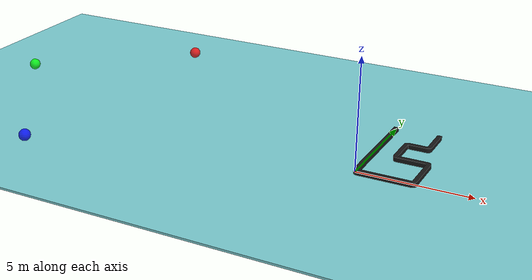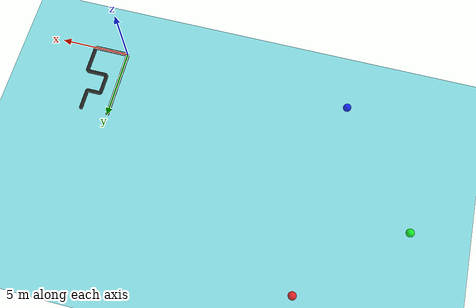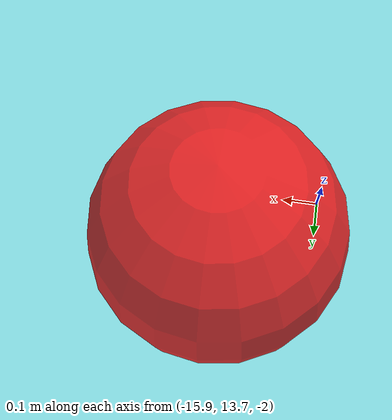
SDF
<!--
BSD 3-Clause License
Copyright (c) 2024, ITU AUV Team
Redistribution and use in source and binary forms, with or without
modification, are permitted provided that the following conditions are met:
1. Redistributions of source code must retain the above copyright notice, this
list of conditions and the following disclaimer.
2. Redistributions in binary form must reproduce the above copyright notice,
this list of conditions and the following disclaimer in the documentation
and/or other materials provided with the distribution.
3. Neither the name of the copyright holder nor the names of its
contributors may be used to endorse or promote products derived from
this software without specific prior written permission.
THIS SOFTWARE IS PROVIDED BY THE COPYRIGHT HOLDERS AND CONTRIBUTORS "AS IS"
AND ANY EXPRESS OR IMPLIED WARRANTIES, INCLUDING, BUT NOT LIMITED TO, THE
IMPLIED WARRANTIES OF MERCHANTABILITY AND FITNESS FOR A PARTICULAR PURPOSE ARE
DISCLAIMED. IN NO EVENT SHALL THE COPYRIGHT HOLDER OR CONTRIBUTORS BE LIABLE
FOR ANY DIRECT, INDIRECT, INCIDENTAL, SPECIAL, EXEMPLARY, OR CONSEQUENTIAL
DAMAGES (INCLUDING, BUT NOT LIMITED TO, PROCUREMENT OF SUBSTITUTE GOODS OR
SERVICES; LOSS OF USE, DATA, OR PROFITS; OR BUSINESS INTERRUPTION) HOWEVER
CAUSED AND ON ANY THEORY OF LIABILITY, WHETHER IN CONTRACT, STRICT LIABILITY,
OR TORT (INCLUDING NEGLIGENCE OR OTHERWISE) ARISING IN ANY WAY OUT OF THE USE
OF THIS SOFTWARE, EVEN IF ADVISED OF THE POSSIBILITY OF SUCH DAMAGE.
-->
<?xml version="1.0" ?>

<sdf version="1.6">
  <world name="prototype_world">
    <physics name="1ms" type="ignored">
      <max_step_size>0.004</max_step_size>
      <real_time_factor>1.0</real_time_factor>
      <real_time_update_rate>250</real_time_update_rate>
    </physics>
    <scene>
      <ambient>0.4 0.4 0.4 1.0</ambient>
      <sky><clouds><speed>12</speed></clouds></sky>
      <shadows>false</shadows>
    </scene>

    <include><uri>https://fuel.gazebosim.org/1.0/OpenRobotics/models/Sun</uri></include>

    <model name='pool_floor'>
      <static>1</static>
      <pose>2 -3 0 0 0 0</pose>
      <link name='pool_floor_link'>
        <collision name='pool_floor_collision'>
          <geometry>
            <box>
              <size>300 300 0.1</size>
            </box>
          </geometry>
          <pose>0 0 -2.18 0 0 0</pose>
          <max_contacts>10</max_contacts>
          <surface>
            <friction>
              <ode>
                <mu>0.5</mu>
                <mu2>0.5</mu2>
              </ode>
            </friction>
            <contact>
              <ode/>
            </contact>
            <bounce/>
          </surface>
        </collision>
        <visual name='pool_floor_visual'>
          <geometry>
            <box>
              <size>300 300 0.1</size>
            </box>
          </geometry>
          <pose>0 0 -2.18 0 0 0</pose>
          <material>
            <ambient>0.5 0.83 0.85 1</ambient>
            <diffuse>0.5 0.83 0.85 1</diffuse>
            <specular>0.1 0.1 0.1 1</specular>
          </material>
        </visual>
        <self_collide>0</self_collide>
        <enable_wind>0</enable_wind>
        <kinematic>0</kinematic>
      </link>
    </model>

    <include>
      <uri>model://teknofest_pipe</uri>
      <name>pipe</name>
      <pose>0 0 0 0 0 0</pose>
    </include>

    <model name='waypoint_marker_1'>
      <static>1</static>
      <pose>-15.65 13.97 -1.70 0 0 0</pose>
      <link name='waypoint_marker_1_link'>
        <visual name='waypoint_marker_1_visual'>
          <geometry><sphere><radius>0.3</radius></sphere></geometry>
          <material>
            <ambient>1 0 0 0.8</ambient>
            <diffuse>1 0 0 0.8</diffuse>
          </material>
        </visual>
      </link>
    </model>

    <model name='waypoint_marker_2'>
      <static>1</static>
      <pose>-22.77 7.78 -1.70 0 0 0</pose>
      <link name='waypoint_marker_2_link'>
        <visual name='waypoint_marker_2_visual'>
          <geometry><sphere><radius>0.3</radius></sphere></geometry>
          <material>
            <ambient>0 1 0 0.8</ambient>
            <diffuse>0 1 0 0.8</diffuse>
          </material>
        </visual>
      </link>
    </model>

    <model name='waypoint_marker_3'>
      <static>1</static>
      <pose>-16.83 -0.57 -1.70 0 0 0</pose>
      <link name='waypoint_marker_3_link'>
        <visual name='waypoint_marker_3_visual'>
          <geometry><sphere><radius>0.3</radius></sphere></geometry>
          <material>
            <ambient>0 0 1 0.8</ambient>
            <diffuse>0 0 1 0.8</diffuse>
          </material>
        </visual>
      </link>
    </model>

    <plugin filename="gz-sim-physics-system" name="gz::sim::systems::Physics"></plugin>
    <plugin filename="gz-sim-user-commands-system" name="gz::sim::systems::UserCommands"></plugin>
    <plugin filename="gz-sim-scene-broadcaster-system" name="gz::sim::systems::SceneBroadcaster"></plugin>
    <plugin filename="gz-sim-imu-system" name="gz::sim::systems::Imu"></plugin>
    <plugin filename="gz-sim-dvl-system" name="gz::sim::systems::DopplerVelocityLogSystem"></plugin>
    <plugin filename="gz-sim-sensors-system" name="gz::sim::systems::Sensors">
      <render_engine>ogre2</render_engine>
    </plugin>

    <plugin
        filename="gz-sim-buoyancy-system"
        name="gz::sim::systems::Buoyancy">
      <!-- Fluid density is 1 (air) above 0 and 1000 (water) below 0 -->
      <graded_buoyancy>
        <default_density>1000</default_density>
        <density_change>
          <above_depth>0</above_depth>
          <density>1</density>
        </density_change>
      </graded_buoyancy>
      <!-- Enable by model name -->
      <enable>prototype_vehicle</enable>
    </plugin>

  </world>
</sdf>

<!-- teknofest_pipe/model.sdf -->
<sdf version="1.6">
  <model name="my_model">
    <static>true</static>
    <link name="link">
      <collision name="collision">
        <geometry>
          <mesh>
            <uri>model://teknofest_pipe/meshes/line.stl</uri>
            <scale>1 1 1</scale>
          </mesh>
        </geometry>
      </collision>
      <visual name="visual">
        <geometry>
          <mesh>
            <uri>model://teknofest_pipe/meshes/line.stl</uri>
            <scale>0.001 0.001 0.001</scale>
          </mesh>
        </geometry>
        <material>
          <ambient>0.1 0.1 0.1 1</ambient>
          <diffuse>0.1 0.1 0.1 1</diffuse>
          <specular>0.05 0.05 0.05 1</specular>
        </material>
      </visual>
      <inertial>
        <mass>1.0</mass>
        <inertia>
          <ixx>0.1</ixx>
          <ixy>0.0</ixy>
          <ixz>0.0</ixz>
          <iyy>0.1</iyy>
          <iyz>0.0</iyz>
          <izz>0.1</izz>
        </inertia>
      </inertial>
    </link>
  </model>
</sdf>
